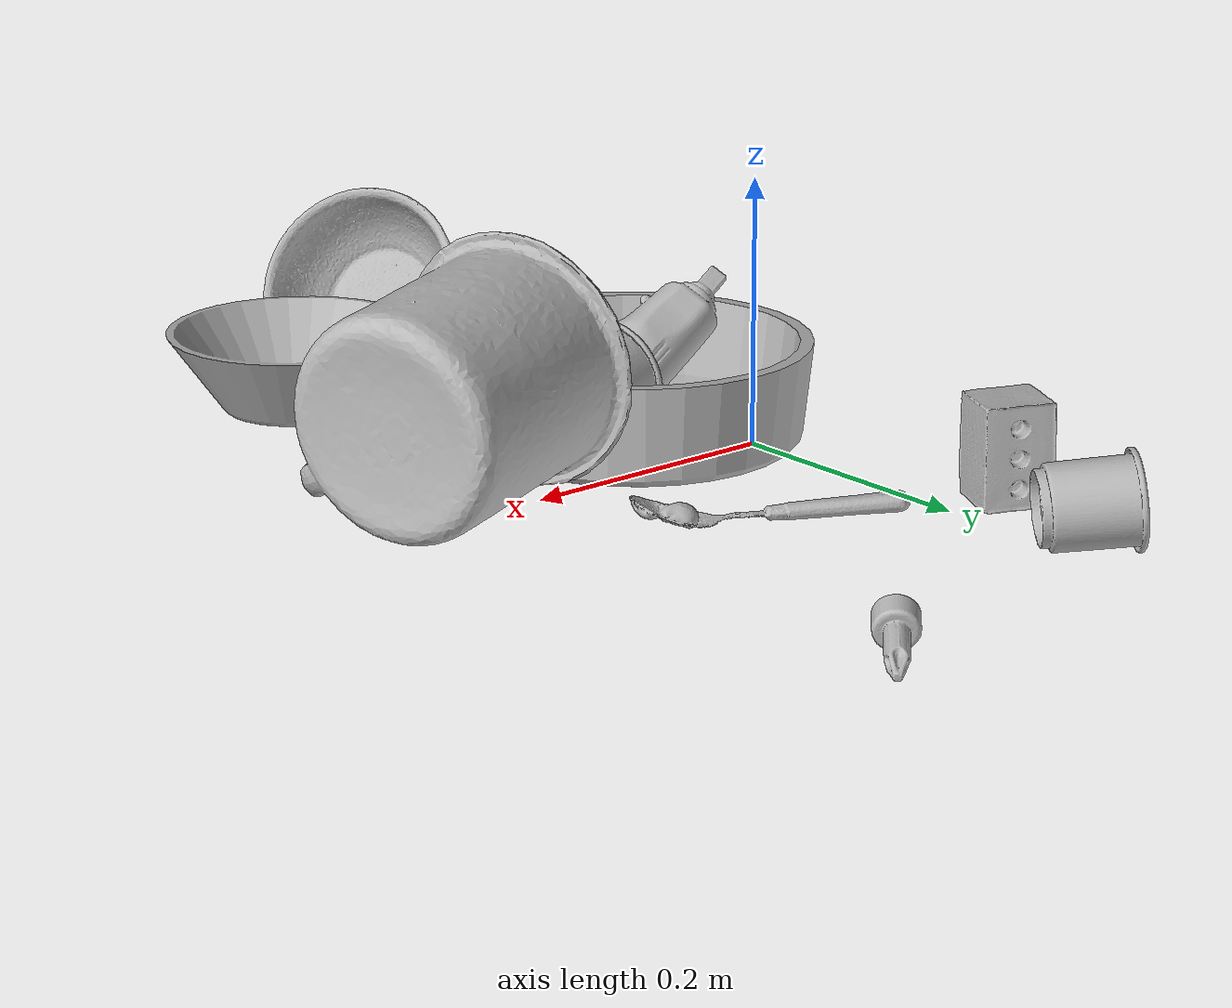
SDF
<sdf version="1.4">
  <world name="default">
    <light name="light1" type="point">
      <pose>0 0 1 0 0 0</pose>
      <diffuse>3 3 3 1</diffuse>
      <specular>3 3 3 1</specular>
    </light>
    <light name="light2" type="point">
      <pose>0 0.5 2 0 0 0</pose>
      <diffuse>1 1 1 1</diffuse>
      <specular>1 1 1 1</specular>
    </light>
    <light name="light3" type="point">
      <pose>0 0.5 2 0 0 0</pose>
      <diffuse>3 3 3 1</diffuse>
      <specular>3 3 3 1</specular>
    </light>
    <scene>
      <ambient>0.7 0.7 0.7</ambient>
    </scene>
    <model name="plate1">
      <link name="link_plate1">
        <collision name="default">
          <geometry>
            <mesh>
              <uri>model://pan_tefal/collision_meshes/collision.obj</uri>
              <scale>1.0 1.0 1.0</scale>
            </mesh>
          </geometry>
          <surface>
            <friction>
              <ode>
                <mu>0.5</mu>
                <mu2>0.5</mu2>
              </ode>
            </friction>
          <contact>
        <ode>
            <max_vel>0</max_vel>
            <min_depth>0.0001</min_depth>
            <kp>1e8</kp>
        </ode>
    </contact></surface>
        </collision>
        <visual name="default">
          <geometry>
            <mesh>
              <uri>model://pan_tefal/visual_meshes/visual.dae</uri>
              <scale>1.0 1.0 1.0</scale>
            </mesh>
          </geometry>
        </visual>
        <inertial>
          <mass>1.356081485748291</mass>
          <pose>-0.00018001878925133497 3.2792810088722035e-05 -0.008514934219419956 0.000819032333381865 -0.0003301471985614655 -0.33185384828338066</pose>
          <inertia>
            <ixx>0.009360965</ixx>
            <iyy>0.009421317</iyy>
            <izz>0.017231734</izz>
            <ixy>0</ixy>
            <ixz>0</ixz>
            <iyz>0</iyz>
          </inertia>
        </inertial>
      </link>
      <pose>0.053808655589818954 -0.07104216516017914 0.03798265755176544 0.0003460671932977869 0.00045561938689181344 -3.05004701820253</pose>
    </model>
    <model name="cup1">
      <link name="link_cup1">
        <collision name="default">
          <geometry>
            <mesh>
              <uri>model://mug/collision_meshes/collision.obj</uri>
              <scale>2.0 2.0 2.0</scale>
            </mesh>
          </geometry>
          <surface>
            <friction>
              <ode>
                <mu>0.5</mu>
                <mu2>0.5</mu2>
              </ode>
            </friction>
          <contact>
        <ode>
            <max_vel>0</max_vel>
            <min_depth>0.0001</min_depth>
            <kp>1e8</kp>
        </ode>
    </contact></surface>
        </collision>
        <visual name="default">
          <geometry>
            <mesh>
              <uri>model://mug/visual_meshes/visual.dae</uri>
              <scale>2.0 2.0 2.0</scale>
            </mesh>
          </geometry>
        </visual>
        <inertial>
          <mass>1.425228476524353</mass>
          <pose>0.019143342971801758 0.0016286519821733236 -0.021894657984375954 -0.12983169455958588 0.08737743422724535 0.05507285753370488</pose>
          <inertia>
            <ixx>0.005662833</ixx>
            <iyy>0.0063250507</iyy>
            <izz>0.0073150056</izz>
            <ixy>0</ixy>
            <ixz>0</ixz>
            <iyz>0</iyz>
          </inertia>
        </inertial>
      </link>
      <pose>0.2736564874649048 -0.026689108461141586 0.07525182515382767 -1.4681831746276042 -0.6051387117678293 1.837121733777336</pose>
    </model>
    <model name="silverware1">
      <link name="link_silverware1">
        <collision name="default">
          <geometry>
            <mesh>
              <uri>model://spoon/collision_meshes/collision.obj</uri>
              <scale>1.0 1.0 1.0</scale>
            </mesh>
          </geometry>
          <surface>
            <friction>
              <ode>
                <mu>0.5</mu>
                <mu2>0.5</mu2>
              </ode>
            </friction>
          <contact>
        <ode>
            <max_vel>0</max_vel>
            <min_depth>0.0001</min_depth>
            <kp>1e8</kp>
        </ode>
    </contact></surface>
        </collision>
        <visual name="default">
          <geometry>
            <mesh>
              <uri>model://spoon/visual_meshes/visual.dae</uri>
              <scale>1.0 1.0 1.0</scale>
            </mesh>
          </geometry>
        </visual>
        <inertial>
          <mass>0.031423501670360565</mass>
          <pose>-0.005526318680495024 -0.0016034176805987954 -0.000727165665011853 0.035217765619004186 -0.03906586018731898 0.006150610672177042</pose>
          <inertia>
            <ixx>1.7478262e-06</ixx>
            <iyy>0.0001195654</iyy>
            <izz>0.000120427336</izz>
            <ixy>0</ixy>
            <ixz>0</ixz>
            <iyz>0</iyz>
          </inertia>
        </inertial>
      </link>
      <pose>0.1083538830280304 0.13501080870628357 0.00838526152074337 0.00673170333845472 0.02689297938056047 -0.5241177910251466</pose>
    </model>
    <model name="silverware2">
      <link name="link_silverware2">
        <collision name="default">
          <geometry>
            <mesh>
              <uri>model://fork/collision_meshes/collision.obj</uri>
              <scale>1.0 1.0 1.0</scale>
            </mesh>
          </geometry>
          <surface>
            <friction>
              <ode>
                <mu>0.5</mu>
                <mu2>0.5</mu2>
              </ode>
            </friction>
          <contact>
        <ode>
            <max_vel>0</max_vel>
            <min_depth>0.0001</min_depth>
            <kp>1e8</kp>
        </ode>
    </contact></surface>
        </collision>
        <visual name="default">
          <geometry>
            <mesh>
              <uri>model://fork/visual_meshes/visual.dae</uri>
              <scale>1.0 1.0 1.0</scale>
            </mesh>
          </geometry>
        </visual>
        <inertial>
          <mass>0.02368462271988392</mass>
          <pose>-0.02957003191113472 0.00046588238910771906 0.00032188621116802096 -0.013550757689210725 -0.010977831639922976 0.014453892765665301</pose>
          <inertia>
            <ixx>8.3028004e-07</ixx>
            <iyy>6.183376e-05</iyy>
            <izz>6.220513e-05</izz>
            <ixy>0</ixy>
            <ixz>0</ixz>
            <iyz>0</iyz>
          </inertia>
        </inertial>
      </link>
      <pose>0.03283746540546417 -0.28639647364616394 0.00744661595672369 -3.0634961591903624 0.0028358832600491805 2.0687428852085135</pose>
    </model>
    <model name="silverware3">
      <link name="link_silverware3">
        <collision name="default">
          <geometry>
            <mesh>
              <uri>model://knife/collision_meshes/collision.obj</uri>
              <scale>1.0 1.0 1.0</scale>
            </mesh>
          </geometry>
          <surface>
            <friction>
              <ode>
                <mu>0.5</mu>
                <mu2>0.5</mu2>
              </ode>
            </friction>
          <contact>
        <ode>
            <max_vel>0</max_vel>
            <min_depth>0.0001</min_depth>
            <kp>1e8</kp>
        </ode>
    </contact></surface>
        </collision>
        <visual name="default">
          <geometry>
            <mesh>
              <uri>model://knife/visual_meshes/visual.dae</uri>
              <scale>1.0 1.0 1.0</scale>
            </mesh>
          </geometry>
        </visual>
        <inertial>
          <mass>0.023530498147010803</mass>
          <pose>-0.023785250261425972 0.0015275124460458755 5.062020863988437e-05 0.07305757972864607 0.01724841573343299 -0.007409825279630946</pose>
          <inertia>
            <ixx>6.678909e-07</ixx>
            <iyy>9.040038e-05</iyy>
            <izz>9.0615475e-05</izz>
            <ixy>0</ixy>
            <ixz>0</ixz>
            <iyz>0</iyz>
          </inertia>
        </inertial>
      </link>
      <pose>-0.08998651057481766 -0.2924196124076843 0.00581076554954052 2.8893663978144057 0.0259146304342133 1.5626859691542963</pose>
    </model>
    <model name="cup3">
      <link name="link_cup3">
        <collision name="default">
          <geometry>
            <mesh>
              <uri>model://b_cups/collision_meshes/collision.obj</uri>
              <scale>1.0 1.0 1.0</scale>
            </mesh>
          </geometry>
          <surface>
            <friction>
              <ode>
                <mu>0.5</mu>
                <mu2>0.5</mu2>
              </ode>
            </friction>
          <contact>
        <ode>
            <max_vel>0</max_vel>
            <min_depth>0.0001</min_depth>
            <kp>1e8</kp>
        </ode>
    </contact></surface>
        </collision>
        <visual name="default">
          <geometry>
            <mesh>
              <uri>model://b_cups/visual_meshes/visual.dae</uri>
              <scale>1.0 1.0 1.0</scale>
            </mesh>
          </geometry>
        </visual>
        <inertial>
          <mass>0.033049143850803375</mass>
          <pose>0.0005182002205401659 0.001805859967134893 -0.0013381808530539274 0.11356265792291019 0.03872585472979472 -0.3457023826899558</pose>
          <inertia>
            <ixx>2.1632983e-05</ixx>
            <iyy>2.1222275e-05</iyy>
            <izz>1.8203747e-05</izz>
            <ixy>0</ixy>
            <ixz>0</ixz>
            <iyz>0</iyz>
          </inertia>
        </inertial>
      </link>
      <pose>-0.0269413311034441 -0.32463836669921875 0.027762578800320625 -1.4737310387088498 0.13883116459750508 -2.8371622324146264</pose>
    </model>
    <model name="cup4">
      <link name="link_cup4">
        <collision name="default">
          <geometry>
            <mesh>
              <uri>model://h_cups/collision_meshes/collision.obj</uri>
              <scale>1.0 1.0 1.0</scale>
            </mesh>
          </geometry>
          <surface>
            <friction>
              <ode>
                <mu>0.5</mu>
                <mu2>0.5</mu2>
              </ode>
            </friction>
          <contact>
        <ode>
            <max_vel>0</max_vel>
            <min_depth>0.0001</min_depth>
            <kp>1e8</kp>
        </ode>
    </contact></surface>
        </collision>
        <visual name="default">
          <geometry>
            <mesh>
              <uri>model://h_cups/visual_meshes/visual.dae</uri>
              <scale>1.0 1.0 1.0</scale>
            </mesh>
          </geometry>
        </visual>
        <inertial>
          <mass>0.11347958445549011</mass>
          <pose>-2.7030910132452846e-05 0.00023018615320324898 -0.0018405403243377805 -0.02436217983877791 0.06545222634893223 0.12885210457354207</pose>
          <inertia>
            <ixx>0.0001465536</ixx>
            <iyy>0.00014480477</iyy>
            <izz>0.00015369456</izz>
            <ixy>0</ixy>
            <ixz>0</ixz>
            <iyz>0</iyz>
          </inertia>
        </inertial>
      </link>
      <pose>0.11913663148880005 -0.05074921250343323 0.0498606339097023 0.02389068097536401 1.459691873723304 -2.79095724770155</pose>
    </model>
    <model name="cup5">
      <link name="link_cup5">
        <collision name="default">
          <geometry>
            <mesh>
              <uri>model://d_cups/collision_meshes/collision.obj</uri>
              <scale>1.0 1.0 1.0</scale>
            </mesh>
          </geometry>
          <surface>
            <friction>
              <ode>
                <mu>0.5</mu>
                <mu2>0.5</mu2>
              </ode>
            </friction>
          <contact>
        <ode>
            <max_vel>0</max_vel>
            <min_depth>0.0001</min_depth>
            <kp>1e8</kp>
        </ode>
    </contact></surface>
        </collision>
        <visual name="default">
          <geometry>
            <mesh>
              <uri>model://d_cups/visual_meshes/visual.dae</uri>
              <scale>1.0 1.0 1.0</scale>
            </mesh>
          </geometry>
        </visual>
        <inertial>
          <mass>0.039110079407691956</mass>
          <pose>0.0008068050956353545 0.0019117392366752028 -0.0022666517179459333 0.24011224021147495 -0.247107611945545 0.594295747375292</pose>
          <inertia>
            <ixx>3.2744327e-05</ixx>
            <iyy>3.2649565e-05</iyy>
            <izz>2.9639183e-05</izz>
            <ixy>0</ixy>
            <ixz>0</ixz>
            <iyz>0</iyz>
          </inertia>
        </inertial>
      </link>
      <pose>-0.011464114300906658 0.3138883709907532 0.03244723379611969 -1.4810614459131857 0.351273669904363 0.9373686643079552</pose>
    </model>
    <model name="bowl1">
      <link name="link_bowl1">
        <collision name="default">
          <geometry>
            <mesh>
              <uri>model://bowl/collision_meshes/collision.obj</uri>
              <scale>1.0 1.0 1.0</scale>
            </mesh>
          </geometry>
          <surface>
            <friction>
              <ode>
                <mu>0.5</mu>
                <mu2>0.5</mu2>
              </ode>
            </friction>
          <contact>
        <ode>
            <max_vel>0</max_vel>
            <min_depth>0.0001</min_depth>
            <kp>1e8</kp>
        </ode>
    </contact></surface>
        </collision>
        <visual name="default">
          <geometry>
            <mesh>
              <uri>model://bowl/visual_meshes/visual.dae</uri>
              <scale>1.0 1.0 1.0</scale>
            </mesh>
          </geometry>
        </visual>
        <inertial>
          <mass>0.04740063101053238</mass>
          <pose>0.00020445372501853853 -0.001030205050483346 -0.000804265437182039 -0.015764138065403298 0.014546740803255881 0.7140373892972721</pose>
          <inertia>
            <ixx>0.00010888298</ixx>
            <iyy>0.000106450105</iyy>
            <izz>0.00018317858</izz>
            <ixy>0</ixy>
            <ixz>0</ixz>
            <iyz>0</iyz>
          </inertia>
        </inertial>
      </link>
      <pose>0.08969607949256897 -0.3511340916156769 0.05820787698030472 1.0014660989085318 0.34664367023593756 1.8630370219486616</pose>
    </model>
    <model name="bowl2">
      <link name="link_bowl2">
        <collision name="default">
          <geometry>
            <mesh>
              <uri>model://bowl_a/collision_meshes/collision.obj</uri>
              <scale>1.0 1.0 1.0</scale>
            </mesh>
          </geometry>
          <surface>
            <friction>
              <ode>
                <mu>0.5</mu>
                <mu2>0.5</mu2>
              </ode>
            </friction>
          <contact>
        <ode>
            <max_vel>0</max_vel>
            <min_depth>0.0001</min_depth>
            <kp>1e8</kp>
        </ode>
    </contact></surface>
        </collision>
        <visual name="default">
          <geometry>
            <mesh>
              <uri>model://bowl_a/visual_meshes/visual.dae</uri>
              <scale>1.0 1.0 1.0</scale>
            </mesh>
          </geometry>
        </visual>
        <inertial>
          <mass>0.4596928358078003</mass>
          <pose>0.0002786756376735866 4.731212538899854e-05 -0.001376529224216938 -0.0009805332698969178 -0.0010938264579112213 -0.1912378887702168</pose>
          <inertia>
            <ixx>0.0013087663</ixx>
            <iyy>0.0013168014</iyy>
            <izz>0.002327691</izz>
            <ixy>0</ixy>
            <ixz>0</ixz>
            <iyz>0</iyz>
          </inertia>
        </inertial>
      </link>
      <pose>0.19925209879875183 -0.295409232378006 0.030382897704839706 -3.967500579480754e-06 1.5845548198486598e-06 -0.6481107192867962</pose>
    </model>
    <model name="toy1">
      <link name="link_toy1">
        <collision name="default">
          <geometry>
            <mesh>
              <uri>model://d_toy_airplane/collision_meshes/collision.obj</uri>
              <scale>1.0 1.0 1.0</scale>
            </mesh>
          </geometry>
          <surface>
            <friction>
              <ode>
                <mu>0.5</mu>
                <mu2>0.5</mu2>
              </ode>
            </friction>
          <contact>
        <ode>
            <max_vel>0</max_vel>
            <min_depth>0.0001</min_depth>
            <kp>1e8</kp>
        </ode>
    </contact></surface>
        </collision>
        <visual name="default">
          <geometry>
            <mesh>
              <uri>model://d_toy_airplane/visual_meshes/visual.dae</uri>
              <scale>1.0 1.0 1.0</scale>
            </mesh>
          </geometry>
        </visual>
        <inertial>
          <mass>0.017302583903074265</mass>
          <pose>9.410295751877129e-05 -5.809326466987841e-05 -0.011728093028068542 0.00026573120399734447 0.004679044314999465 0.5192011935173154</pose>
          <inertia>
            <ixx>5.1869783e-06</ixx>
            <iyy>5.190892e-06</iyy>
            <izz>1.5659823e-06</izz>
            <ixy>0</ixy>
            <ixz>0</ixz>
            <iyz>0</iyz>
          </inertia>
        </inertial>
      </link>
      <pose>0.22743725776672363 0.37466052174568176 0.011235082522034645 1.813554558663364 0.09757190467194927 2.3985323629534254</pose>
    </model>
    <model name="toy2">
      <link name="link_toy2">
        <collision name="default">
          <geometry>
            <mesh>
              <uri>model://b_toy_airplane/collision_meshes/collision.obj</uri>
              <scale>1.0 1.0 1.0</scale>
            </mesh>
          </geometry>
          <surface>
            <friction>
              <ode>
                <mu>0.5</mu>
                <mu2>0.5</mu2>
              </ode>
            </friction>
          <contact>
        <ode>
            <max_vel>0</max_vel>
            <min_depth>0.0001</min_depth>
            <kp>1e8</kp>
        </ode>
    </contact></surface>
        </collision>
        <visual name="default">
          <geometry>
            <mesh>
              <uri>model://b_toy_airplane/visual_meshes/visual.dae</uri>
              <scale>1.0 1.0 1.0</scale>
            </mesh>
          </geometry>
        </visual>
        <inertial>
          <mass>0.45341360569000244</mass>
          <pose>0.00508136535063386 0.004015584941953421 0.00954306498169899 -0.04001809497736226 -0.04022180630889015 -0.560150289687741</pose>
          <inertia>
            <ixx>0.0008417707</ixx>
            <iyy>0.00033646397</iyy>
            <izz>0.0010472467</izz>
            <ixy>0</ixy>
            <ixz>0</ixz>
            <iyz>0</iyz>
          </inertia>
        </inertial>
      </link>
      <pose>0.02822296693921089 -0.11843571811914444 0.06650091707706451 -2.375737072667977 -0.5559387157283349 -3.043913318383773</pose>
    </model>
    <model name="toy3">
      <link name="link_toy3">
        <collision name="default">
          <geometry>
            <mesh>
              <uri>model://a_lego_duplo/collision_meshes/collision.obj</uri>
              <scale>1.0 1.0 1.0</scale>
            </mesh>
          </geometry>
          <surface>
            <friction>
              <ode>
                <mu>0.5</mu>
                <mu2>0.5</mu2>
              </ode>
            </friction>
          <contact>
        <ode>
            <max_vel>0</max_vel>
            <min_depth>0.0001</min_depth>
            <kp>1e8</kp>
        </ode>
    </contact></surface>
        </collision>
        <visual name="default">
          <geometry>
            <mesh>
              <uri>model://a_lego_duplo/visual_meshes/visual.dae</uri>
              <scale>1.0 1.0 1.0</scale>
            </mesh>
          </geometry>
        </visual>
        <inertial>
          <mass>0.019445955753326416</mass>
          <pose>-0.00011337668547639623 0.0001851754350354895 0.00036926064058206975 -0.014116968054253443 -0.00012565964371363686 6.142473690124929e-05</pose>
          <inertia>
            <ixx>2.4931269e-06</ixx>
            <iyy>5.58515e-06</iyy>
            <izz>6.9184516e-06</izz>
            <ixy>0</ixy>
            <ixz>0</ixz>
            <iyz>0</iyz>
          </inertia>
        </inertial>
      </link>
      <pose>-0.0468788668513298 -0.38388749957084656 0.012124794535338879 -3.1412850260549687 -0.01558167327225108 -3.14155075963641</pose>
    </model>
    <model name="toy4">
      <link name="link_toy4">
        <collision name="default">
          <geometry>
            <mesh>
              <uri>model://foam_brick/collision_meshes/collision.obj</uri>
              <scale>1.0 1.0 1.0</scale>
            </mesh>
          </geometry>
          <surface>
            <friction>
              <ode>
                <mu>0.5</mu>
                <mu2>0.5</mu2>
              </ode>
            </friction>
          <contact>
        <ode>
            <max_vel>0</max_vel>
            <min_depth>0.0001</min_depth>
            <kp>1e8</kp>
        </ode>
    </contact></surface>
        </collision>
        <visual name="default">
          <geometry>
            <mesh>
              <uri>model://foam_brick/visual_meshes/visual.dae</uri>
              <scale>1.0 1.0 1.0</scale>
            </mesh>
          </geometry>
        </visual>
        <inertial>
          <mass>0.18476375937461853</mass>
          <pose>-0.00025224717683158815 0.0003458433784544468 -0.00025321010616607964 -0.2940193708875024 0.01727444338713918 -0.0007449870082442464</pose>
          <inertia>
            <ixx>8.070827e-05</ixx>
            <iyy>0.00012885487</iyy>
            <izz>0.00013049248</izz>
            <ixy>0</ixy>
            <ixz>0</ixz>
            <iyz>0</iyz>
          </inertia>
        </inertial>
      </link>
      <pose>-0.045272279530763626 0.21012617647647858 0.03830835968255997 2.010292263408914 1.5521816833493594 3.128953555995178</pose>
    </model>
    <model name="toy5">
      <link name="link_toy5">
        <collision name="default">
          <geometry>
            <mesh>
              <uri>model://e_toy_airplane/collision_meshes/collision.obj</uri>
              <scale>1.0 1.0 1.0</scale>
            </mesh>
          </geometry>
          <surface>
            <friction>
              <ode>
                <mu>0.5</mu>
                <mu2>0.5</mu2>
              </ode>
            </friction>
          <contact>
        <ode>
            <max_vel>0</max_vel>
            <min_depth>0.0001</min_depth>
            <kp>1e8</kp>
        </ode>
    </contact></surface>
        </collision>
        <visual name="default">
          <geometry>
            <mesh>
              <uri>model://e_toy_airplane/visual_meshes/visual.dae</uri>
              <scale>1.0 1.0 1.0</scale>
            </mesh>
          </geometry>
        </visual>
        <inertial>
          <mass>0.01085815578699112</mass>
          <pose>0.00011740455374820158 -2.248299279017374e-05 -0.011187206953763962 0.005518501127689679 0.009228289957601814 0.15041514141603637</pose>
          <inertia>
            <ixx>3.3140323e-06</ixx>
            <iyy>3.2801318e-06</iyy>
            <izz>9.959974e-07</izz>
            <ixy>0</ixy>
            <ixz>0</ixz>
            <iyz>0</iyz>
          </inertia>
        </inertial>
      </link>
      <pose>-0.051612041890621185 -0.20981325209140778 0.010808534920215607 -2.145137068731733 1.102784490952612 -0.9114409278247554</pose>
    </model>
  <physics type="ode">
      <max_contacts>50</max_contacts>
      <ode>
        <solver>
          <type>quick</type>
          <iters>75</iters>
        </solver>
        <constraints>
          <contact_max_correcting_vel>0</contact_max_correcting_vel>
          <contact_surface_layer>0</contact_surface_layer>
        </constraints>
      </ode>
    </physics></world>
</sdf>
